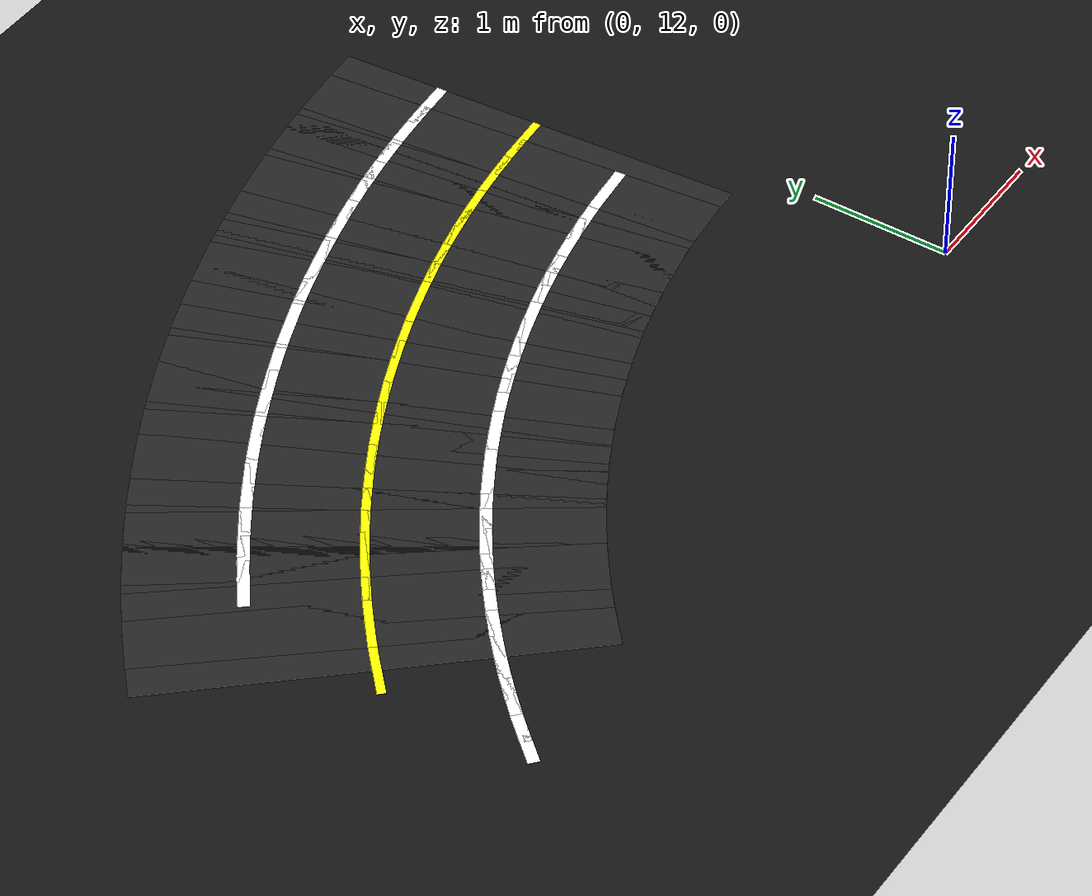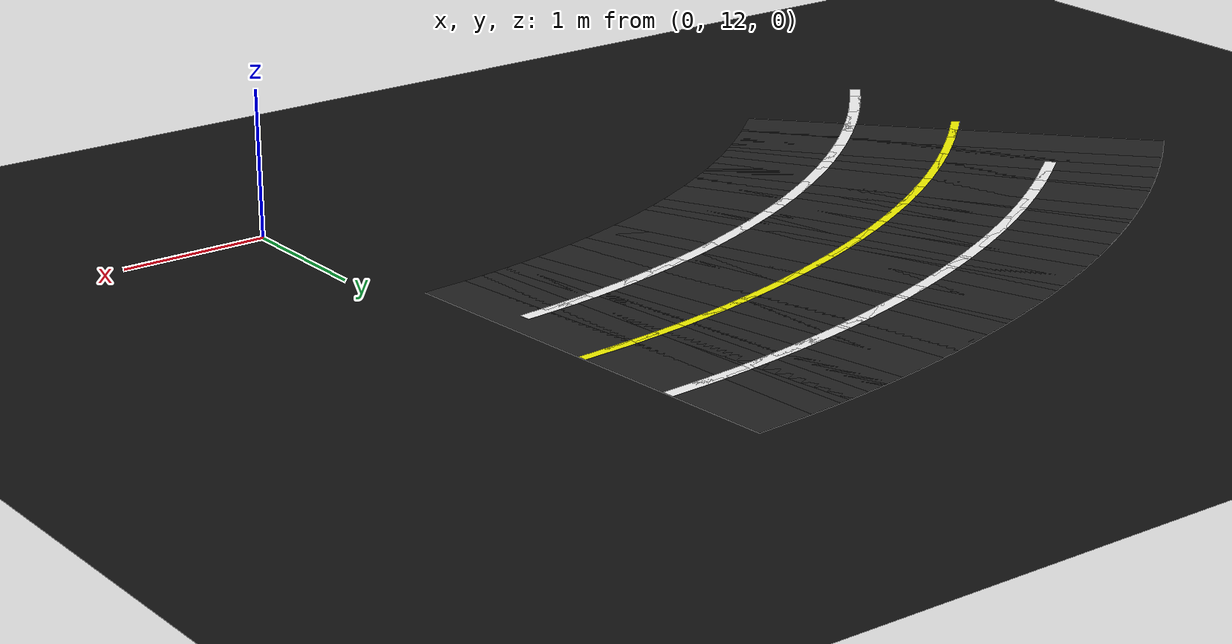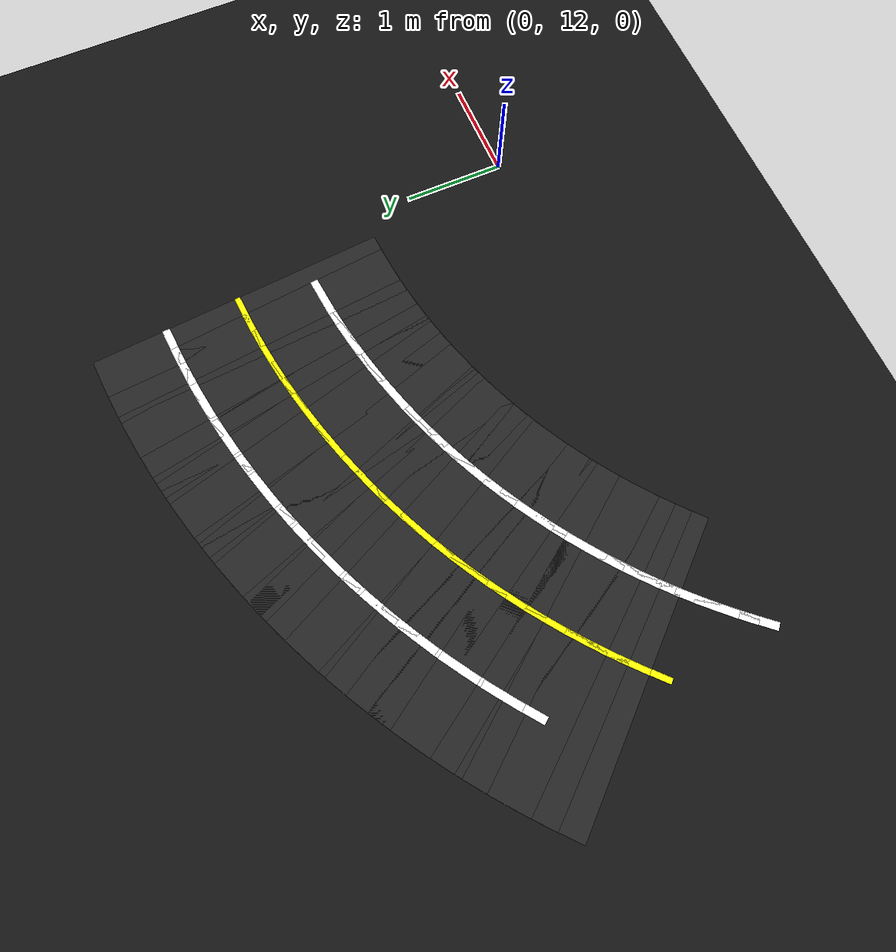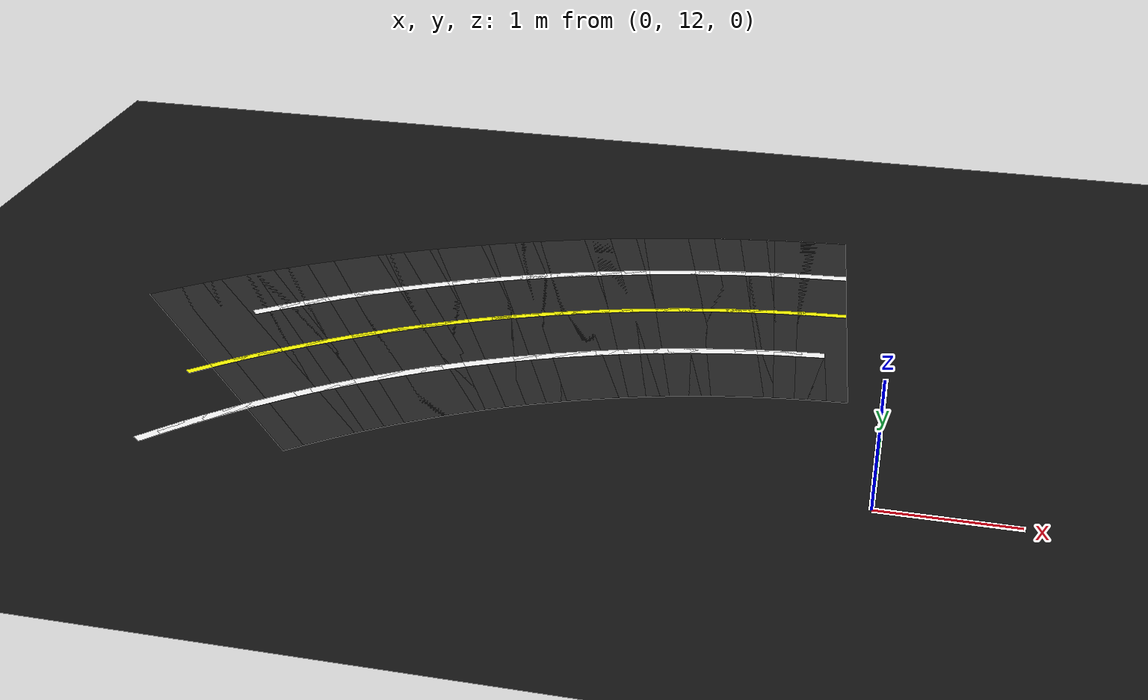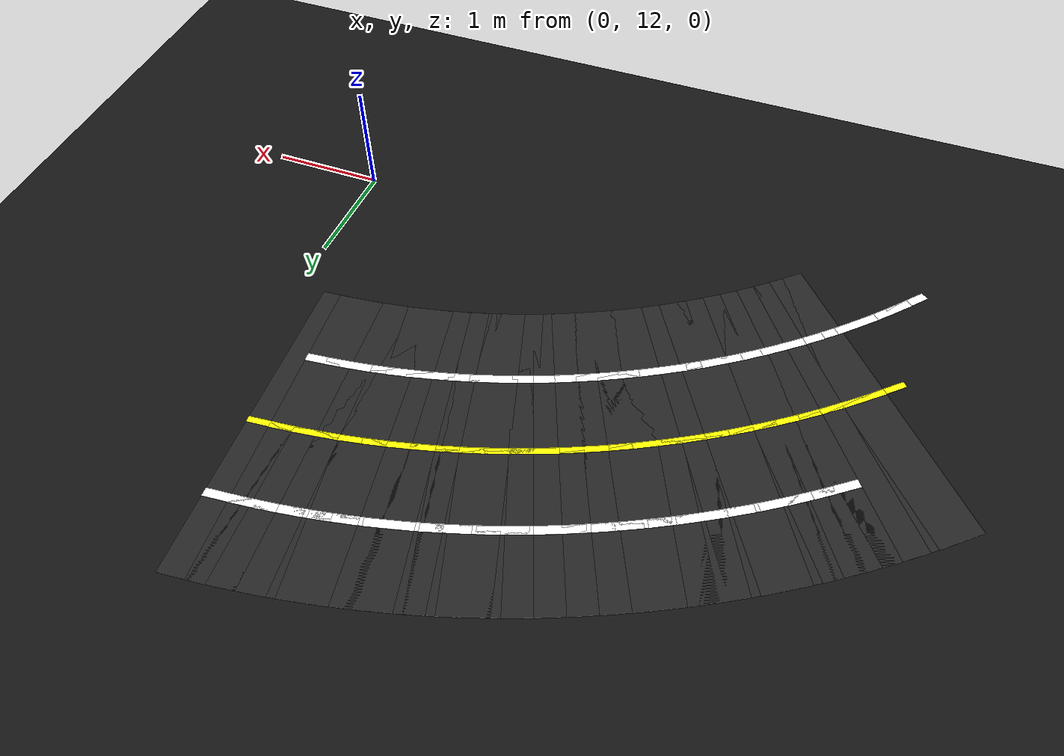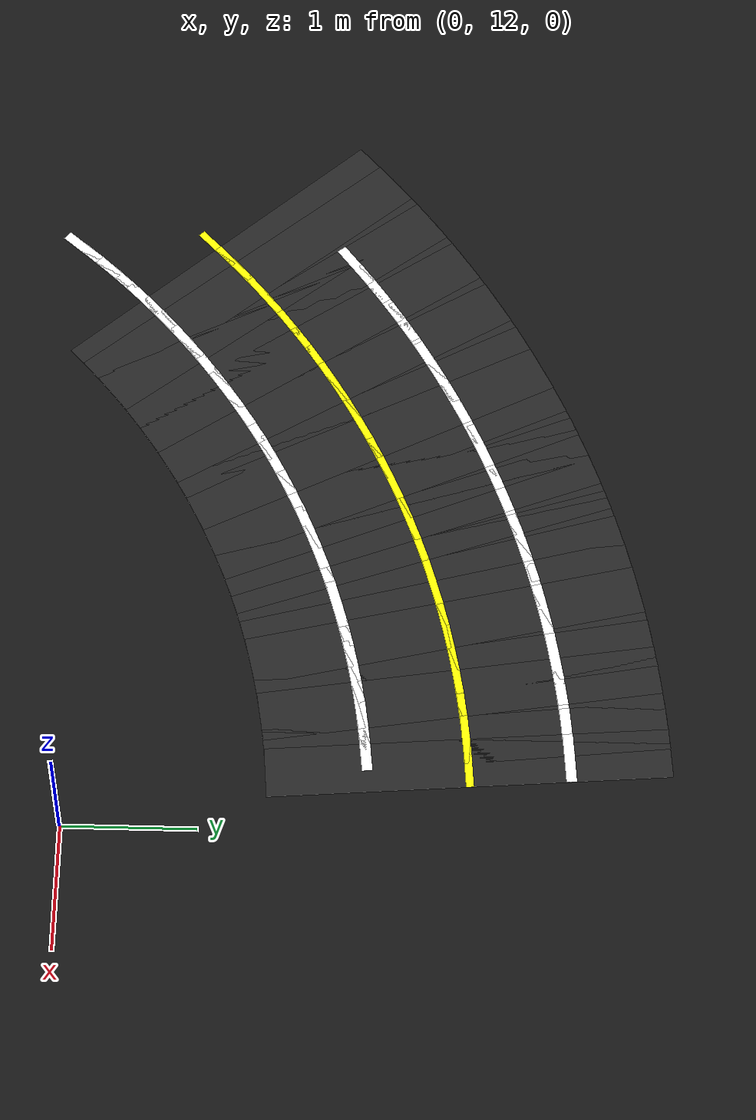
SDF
<sdf version="1.6">
 <world name="figure8_world">
  <model name="ground_plane">
   <static>true</static>
   <link name="link">
    <collision name="collision">
     <geometry><plane><normal>0 0 1</normal><size>120 120</size></plane></geometry>
    </collision>
    <visual name="visual">
     <geometry><plane><normal>0 0 1</normal><size>120 120</size></plane></geometry>
     <material><ambient>0.08 0.08 0.08 1</ambient><diffuse>0.08 0.08 0.08 1</diffuse></material>
    </visual>
   </link>
  </model>
  <model name="seg_00252">
   <static>true</static>
   <pose>-0.5884 14.9769 0.0010 0 0 3.2201</pose>
   <link name="link">
    <collision name="collision"><geometry><box><size>0.4000 3.0000 0.002</size></box></geometry></collision>
    <visual name="visual">
     <geometry><box><size>0.4000 3.0000 0.002</size></box></geometry>
     <material><ambient>0.14 0.14 0.14 1</ambient><diffuse>0.14 0.14 0.14 1</diffuse></material>
    </visual>
   </link>
  </model>
  <model name="seg_00253">
   <static>true</static>
   <pose>-0.6473 15.7246 0.0030 0 0 3.2201</pose>
   <link name="link">
    <collision name="collision"><geometry><box><size>0.4000 0.0800 0.002</size></box></geometry></collision>
    <visual name="visual">
     <geometry><box><size>0.4000 0.0800 0.002</size></box></geometry>
     <material><ambient>1 1 1 1</ambient><diffuse>1 1 1 1</diffuse></material>
    </visual>
   </link>
  </model>
  <model name="seg_00255">
   <static>true</static>
   <pose>-0.5884 14.9769 0.0030 0 0 3.2201</pose>
   <link name="link">
    <collision name="collision"><geometry><box><size>0.4000 0.0600 0.002</size></box></geometry></collision>
    <visual name="visual">
     <geometry><box><size>0.4000 0.0600 0.002</size></box></geometry>
     <material><ambient>1 1 0 1</ambient><diffuse>1 1 0 1</diffuse></material>
    </visual>
   </link>
  </model>
  <model name="seg_00256">
   <static>true</static>
   <pose>-0.7840 14.9589 0.0010 0 0 3.2463</pose>
   <link name="link">
    <collision name="collision"><geometry><box><size>0.4000 3.0000 0.002</size></box></geometry></collision>
    <visual name="visual">
     <geometry><box><size>0.4000 3.0000 0.002</size></box></geometry>
     <material><ambient>0.14 0.14 0.14 1</ambient><diffuse>0.14 0.14 0.14 1</diffuse></material>
    </visual>
   </link>
  </model>
  <model name="seg_00257">
   <static>true</static>
   <pose>-0.8624 15.7048 0.0030 0 0 3.2463</pose>
   <link name="link">
    <collision name="collision"><geometry><box><size>0.4000 0.0800 0.002</size></box></geometry></collision>
    <visual name="visual">
     <geometry><box><size>0.4000 0.0800 0.002</size></box></geometry>
     <material><ambient>1 1 1 1</ambient><diffuse>1 1 1 1</diffuse></material>
    </visual>
   </link>
  </model>
  <model name="seg_00258">
   <static>true</static>
   <pose>-0.7056 14.2130 0.0030 0 0 3.2463</pose>
   <link name="link">
    <collision name="collision"><geometry><box><size>0.4000 0.0800 0.002</size></box></geometry></collision>
    <visual name="visual">
     <geometry><box><size>0.4000 0.0800 0.002</size></box></geometry>
     <material><ambient>1 1 1 1</ambient><diffuse>1 1 1 1</diffuse></material>
    </visual>
   </link>
  </model>
  <model name="seg_00259">
   <static>true</static>
   <pose>-0.7840 14.9589 0.0030 0 0 3.2463</pose>
   <link name="link">
    <collision name="collision"><geometry><box><size>0.4000 0.0600 0.002</size></box></geometry></collision>
    <visual name="visual">
     <geometry><box><size>0.4000 0.0600 0.002</size></box></geometry>
     <material><ambient>1 1 0 1</ambient><diffuse>1 1 0 1</diffuse></material>
    </visual>
   </link>
  </model>
  <model name="seg_00260">
   <static>true</static>
   <pose>-0.9789 14.9358 0.0010 0 0 3.2725</pose>
   <link name="link">
    <collision name="collision"><geometry><box><size>0.4000 3.0000 0.002</size></box></geometry></collision>
    <visual name="visual">
     <geometry><box><size>0.4000 3.0000 0.002</size></box></geometry>
     <material><ambient>0.14 0.14 0.14 1</ambient><diffuse>0.14 0.14 0.14 1</diffuse></material>
    </visual>
   </link>
  </model>
  <model name="seg_00261">
   <static>true</static>
   <pose>-1.0768 15.6794 0.0030 0 0 3.2725</pose>
   <link name="link">
    <collision name="collision"><geometry><box><size>0.4000 0.0800 0.002</size></box></geometry></collision>
    <visual name="visual">
     <geometry><box><size>0.4000 0.0800 0.002</size></box></geometry>
     <material><ambient>1 1 1 1</ambient><diffuse>1 1 1 1</diffuse></material>
    </visual>
   </link>
  </model>
  <model name="seg_00262">
   <static>true</static>
   <pose>-0.8811 14.1923 0.0030 0 0 3.2725</pose>
   <link name="link">
    <collision name="collision"><geometry><box><size>0.4000 0.0800 0.002</size></box></geometry></collision>
    <visual name="visual">
     <geometry><box><size>0.4000 0.0800 0.002</size></box></geometry>
     <material><ambient>1 1 1 1</ambient><diffuse>1 1 1 1</diffuse></material>
    </visual>
   </link>
  </model>
  <model name="seg_00263">
   <static>true</static>
   <pose>-0.9789 14.9358 0.0030 0 0 3.2725</pose>
   <link name="link">
    <collision name="collision"><geometry><box><size>0.4000 0.0600 0.002</size></box></geometry></collision>
    <visual name="visual">
     <geometry><box><size>0.4000 0.0600 0.002</size></box></geometry>
     <material><ambient>1 1 0 1</ambient><diffuse>1 1 0 1</diffuse></material>
    </visual>
   </link>
  </model>
  <model name="seg_00264">
   <static>true</static>
   <pose>-1.1733 14.9077 0.0010 0 0 3.2987</pose>
   <link name="link">
    <collision name="collision"><geometry><box><size>0.4000 3.0000 0.002</size></box></geometry></collision>
    <visual name="visual">
     <geometry><box><size>0.4000 3.0000 0.002</size></box></geometry>
     <material><ambient>0.14 0.14 0.14 1</ambient><diffuse>0.14 0.14 0.14 1</diffuse></material>
    </visual>
   </link>
  </model>
  <model name="seg_00265">
   <static>true</static>
   <pose>-1.2906 15.6484 0.0030 0 0 3.2987</pose>
   <link name="link">
    <collision name="collision"><geometry><box><size>0.4000 0.0800 0.002</size></box></geometry></collision>
    <visual name="visual">
     <geometry><box><size>0.4000 0.0800 0.002</size></box></geometry>
     <material><ambient>1 1 1 1</ambient><diffuse>1 1 1 1</diffuse></material>
    </visual>
   </link>
  </model>
  <model name="seg_00266">
   <static>true</static>
   <pose>-1.0559 14.1669 0.0030 0 0 3.2987</pose>
   <link name="link">
    <collision name="collision"><geometry><box><size>0.4000 0.0800 0.002</size></box></geometry></collision>
    <visual name="visual">
     <geometry><box><size>0.4000 0.0800 0.002</size></box></geometry>
     <material><ambient>1 1 1 1</ambient><diffuse>1 1 1 1</diffuse></material>
    </visual>
   </link>
  </model>
  <model name="seg_00267">
   <static>true</static>
   <pose>-1.1733 14.9077 0.0030 0 0 3.2987</pose>
   <link name="link">
    <collision name="collision"><geometry><box><size>0.4000 0.0600 0.002</size></box></geometry></collision>
    <visual name="visual">
     <geometry><box><size>0.4000 0.0600 0.002</size></box></geometry>
     <material><ambient>1 1 0 1</ambient><diffuse>1 1 0 1</diffuse></material>
    </visual>
   </link>
  </model>
  <model name="seg_00268">
   <static>true</static>
   <pose>-1.3668 14.8744 0.0010 0 0 3.3249</pose>
   <link name="link">
    <collision name="collision"><geometry><box><size>0.4000 3.0000 0.002</size></box></geometry></collision>
    <visual name="visual">
     <geometry><box><size>0.4000 3.0000 0.002</size></box></geometry>
     <material><ambient>0.14 0.14 0.14 1</ambient><diffuse>0.14 0.14 0.14 1</diffuse></material>
    </visual>
   </link>
  </model>
  <model name="seg_00269">
   <static>true</static>
   <pose>-1.5034 15.6119 0.0030 0 0 3.3249</pose>
   <link name="link">
    <collision name="collision"><geometry><box><size>0.4000 0.0800 0.002</size></box></geometry></collision>
    <visual name="visual">
     <geometry><box><size>0.4000 0.0800 0.002</size></box></geometry>
     <material><ambient>1 1 1 1</ambient><diffuse>1 1 1 1</diffuse></material>
    </visual>
   </link>
  </model>
  <model name="seg_00270">
   <static>true</static>
   <pose>-1.2301 14.1370 0.0030 0 0 3.3249</pose>
   <link name="link">
    <collision name="collision"><geometry><box><size>0.4000 0.0800 0.002</size></box></geometry></collision>
    <visual name="visual">
     <geometry><box><size>0.4000 0.0800 0.002</size></box></geometry>
     <material><ambient>1 1 1 1</ambient><diffuse>1 1 1 1</diffuse></material>
    </visual>
   </link>
  </model>
  <model name="seg_00271">
   <static>true</static>
   <pose>-1.3668 14.8744 0.0030 0 0 3.3249</pose>
   <link name="link">
    <collision name="collision"><geometry><box><size>0.4000 0.0600 0.002</size></box></geometry></collision>
    <visual name="visual">
     <geometry><box><size>0.4000 0.0600 0.002</size></box></geometry>
     <material><ambient>1 1 0 1</ambient><diffuse>1 1 0 1</diffuse></material>
    </visual>
   </link>
  </model>
  <model name="seg_00272">
   <static>true</static>
   <pose>-1.5593 14.8361 0.0010 0 0 3.3510</pose>
   <link name="link">
    <collision name="collision"><geometry><box><size>0.4000 3.0000 0.002</size></box></geometry></collision>
    <visual name="visual">
     <geometry><box><size>0.4000 3.0000 0.002</size></box></geometry>
     <material><ambient>0.14 0.14 0.14 1</ambient><diffuse>0.14 0.14 0.14 1</diffuse></material>
    </visual>
   </link>
  </model>
  <model name="seg_00273">
   <static>true</static>
   <pose>-1.7153 15.5697 0.0030 0 0 3.3510</pose>
   <link name="link">
    <collision name="collision"><geometry><box><size>0.4000 0.0800 0.002</size></box></geometry></collision>
    <visual name="visual">
     <geometry><box><size>0.4000 0.0800 0.002</size></box></geometry>
     <material><ambient>1 1 1 1</ambient><diffuse>1 1 1 1</diffuse></material>
    </visual>
   </link>
  </model>
  <model name="seg_00274">
   <static>true</static>
   <pose>-1.4034 14.1025 0.0030 0 0 3.3510</pose>
   <link name="link">
    <collision name="collision"><geometry><box><size>0.4000 0.0800 0.002</size></box></geometry></collision>
    <visual name="visual">
     <geometry><box><size>0.4000 0.0800 0.002</size></box></geometry>
     <material><ambient>1 1 1 1</ambient><diffuse>1 1 1 1</diffuse></material>
    </visual>
   </link>
  </model>
  <model name="seg_00275">
   <static>true</static>
   <pose>-1.5593 14.8361 0.0030 0 0 3.3510</pose>
   <link name="link">
    <collision name="collision"><geometry><box><size>0.4000 0.0600 0.002</size></box></geometry></collision>
    <visual name="visual">
     <geometry><box><size>0.4000 0.0600 0.002</size></box></geometry>
     <material><ambient>1 1 0 1</ambient><diffuse>1 1 0 1</diffuse></material>
    </visual>
   </link>
  </model>
  <model name="seg_00276">
   <static>true</static>
   <pose>-1.7508 14.7928 0.0010 0 0 3.3772</pose>
   <link name="link">
    <collision name="collision"><geometry><box><size>0.4000 3.0000 0.002</size></box></geometry></collision>
    <visual name="visual">
     <geometry><box><size>0.4000 3.0000 0.002</size></box></geometry>
     <material><ambient>0.14 0.14 0.14 1</ambient><diffuse>0.14 0.14 0.14 1</diffuse></material>
    </visual>
   </link>
  </model>
  <model name="seg_00277">
   <static>true</static>
   <pose>-1.9259 15.5221 0.0030 0 0 3.3772</pose>
   <link name="link">
    <collision name="collision"><geometry><box><size>0.4000 0.0800 0.002</size></box></geometry></collision>
    <visual name="visual">
     <geometry><box><size>0.4000 0.0800 0.002</size></box></geometry>
     <material><ambient>1 1 1 1</ambient><diffuse>1 1 1 1</diffuse></material>
    </visual>
   </link>
  </model>
  <model name="seg_00278">
   <static>true</static>
   <pose>-1.5758 14.0635 0.0030 0 0 3.3772</pose>
   <link name="link">
    <collision name="collision"><geometry><box><size>0.4000 0.0800 0.002</size></box></geometry></collision>
    <visual name="visual">
     <geometry><box><size>0.4000 0.0800 0.002</size></box></geometry>
     <material><ambient>1 1 1 1</ambient><diffuse>1 1 1 1</diffuse></material>
    </visual>
   </link>
  </model>
  <model name="seg_00279">
   <static>true</static>
   <pose>-1.7508 14.7928 0.0030 0 0 3.3772</pose>
   <link name="link">
    <collision name="collision"><geometry><box><size>0.4000 0.0600 0.002</size></box></geometry></collision>
    <visual name="visual">
     <geometry><box><size>0.4000 0.0600 0.002</size></box></geometry>
     <material><ambient>1 1 0 1</ambient><diffuse>1 1 0 1</diffuse></material>
    </visual>
   </link>
  </model>
  <model name="seg_00280">
   <static>true</static>
   <pose>-1.9411 14.7444 0.0010 0 0 3.4034</pose>
   <link name="link">
    <collision name="collision"><geometry><box><size>0.4000 3.0000 0.002</size></box></geometry></collision>
    <visual name="visual">
     <geometry><box><size>0.4000 3.0000 0.002</size></box></geometry>
     <material><ambient>0.14 0.14 0.14 1</ambient><diffuse>0.14 0.14 0.14 1</diffuse></material>
    </visual>
   </link>
  </model>
  <model name="seg_00281">
   <static>true</static>
   <pose>-2.1353 15.4689 0.0030 0 0 3.4034</pose>
   <link name="link">
    <collision name="collision"><geometry><box><size>0.4000 0.0800 0.002</size></box></geometry></collision>
    <visual name="visual">
     <geometry><box><size>0.4000 0.0800 0.002</size></box></geometry>
     <material><ambient>1 1 1 1</ambient><diffuse>1 1 1 1</diffuse></material>
    </visual>
   </link>
  </model>
  <model name="seg_00282">
   <static>true</static>
   <pose>-1.7470 14.0200 0.0030 0 0 3.4034</pose>
   <link name="link">
    <collision name="collision"><geometry><box><size>0.4000 0.0800 0.002</size></box></geometry></collision>
    <visual name="visual">
     <geometry><box><size>0.4000 0.0800 0.002</size></box></geometry>
     <material><ambient>1 1 1 1</ambient><diffuse>1 1 1 1</diffuse></material>
    </visual>
   </link>
  </model>
  <model name="seg_00283">
   <static>true</static>
   <pose>-1.9411 14.7444 0.0030 0 0 3.4034</pose>
   <link name="link">
    <collision name="collision"><geometry><box><size>0.4000 0.0600 0.002</size></box></geometry></collision>
    <visual name="visual">
     <geometry><box><size>0.4000 0.0600 0.002</size></box></geometry>
     <material><ambient>1 1 0 1</ambient><diffuse>1 1 0 1</diffuse></material>
    </visual>
   </link>
  </model>
  <model name="seg_00284">
   <static>true</static>
   <pose>-2.1301 14.6911 0.0010 0 0 3.4296</pose>
   <link name="link">
    <collision name="collision"><geometry><box><size>0.4000 3.0000 0.002</size></box></geometry></collision>
    <visual name="visual">
     <geometry><box><size>0.4000 3.0000 0.002</size></box></geometry>
     <material><ambient>0.14 0.14 0.14 1</ambient><diffuse>0.14 0.14 0.14 1</diffuse></material>
    </visual>
   </link>
  </model>
  <model name="seg_00285">
   <static>true</static>
   <pose>-2.3431 15.4103 0.0030 0 0 3.4296</pose>
   <link name="link">
    <collision name="collision"><geometry><box><size>0.4000 0.0800 0.002</size></box></geometry></collision>
    <visual name="visual">
     <geometry><box><size>0.4000 0.0800 0.002</size></box></geometry>
     <material><ambient>1 1 1 1</ambient><diffuse>1 1 1 1</diffuse></material>
    </visual>
   </link>
  </model>
  <model name="seg_00286">
   <static>true</static>
   <pose>-1.9171 13.9720 0.0030 0 0 3.4296</pose>
   <link name="link">
    <collision name="collision"><geometry><box><size>0.4000 0.0800 0.002</size></box></geometry></collision>
    <visual name="visual">
     <geometry><box><size>0.4000 0.0800 0.002</size></box></geometry>
     <material><ambient>1 1 1 1</ambient><diffuse>1 1 1 1</diffuse></material>
    </visual>
   </link>
  </model>
  <model name="seg_00287">
   <static>true</static>
   <pose>-2.1301 14.6911 0.0030 0 0 3.4296</pose>
   <link name="link">
    <collision name="collision"><geometry><box><size>0.4000 0.0600 0.002</size></box></geometry></collision>
    <visual name="visual">
     <geometry><box><size>0.4000 0.0600 0.002</size></box></geometry>
     <material><ambient>1 1 0 1</ambient><diffuse>1 1 0 1</diffuse></material>
    </visual>
   </link>
  </model>
  <model name="seg_00288">
   <static>true</static>
   <pose>-2.3176 14.6329 0.0010 0 0 3.4558</pose>
   <link name="link">
    <collision name="collision"><geometry><box><size>0.4000 3.0000 0.002</size></box></geometry></collision>
    <visual name="visual">
     <geometry><box><size>0.4000 3.0000 0.002</size></box></geometry>
     <material><ambient>0.14 0.14 0.14 1</ambient><diffuse>0.14 0.14 0.14 1</diffuse></material>
    </visual>
   </link>
  </model>
  <model name="seg_00289">
   <static>true</static>
   <pose>-2.5494 15.3462 0.0030 0 0 3.4558</pose>
   <link name="link">
    <collision name="collision"><geometry><box><size>0.4000 0.0800 0.002</size></box></geometry></collision>
    <visual name="visual">
     <geometry><box><size>0.4000 0.0800 0.002</size></box></geometry>
     <material><ambient>1 1 1 1</ambient><diffuse>1 1 1 1</diffuse></material>
    </visual>
   </link>
  </model>
  <model name="seg_00290">
   <static>true</static>
   <pose>-2.0859 13.9196 0.0030 0 0 3.4558</pose>
   <link name="link">
    <collision name="collision"><geometry><box><size>0.4000 0.0800 0.002</size></box></geometry></collision>
    <visual name="visual">
     <geometry><box><size>0.4000 0.0800 0.002</size></box></geometry>
     <material><ambient>1 1 1 1</ambient><diffuse>1 1 1 1</diffuse></material>
    </visual>
   </link>
  </model>
  <model name="seg_00291">
   <static>true</static>
   <pose>-2.3176 14.6329 0.0030 0 0 3.4558</pose>
   <link name="link">
    <collision name="collision"><geometry><box><size>0.4000 0.0600 0.002</size></box></geometry></collision>
    <visual name="visual">
     <geometry><box><size>0.4000 0.0600 0.002</size></box></geometry>
     <material><ambient>1 1 0 1</ambient><diffuse>1 1 0 1</diffuse></material>
    </visual>
   </link>
  </model>
  <model name="seg_00292">
   <static>true</static>
   <pose>-2.5036 14.5698 0.0010 0 0 3.4819</pose>
   <link name="link">
    <collision name="collision"><geometry><box><size>0.4000 3.0000 0.002</size></box></geometry></collision>
    <visual name="visual">
     <geometry><box><size>0.4000 3.0000 0.002</size></box></geometry>
     <material><ambient>0.14 0.14 0.14 1</ambient><diffuse>0.14 0.14 0.14 1</diffuse></material>
    </visual>
   </link>
  </model>
  <model name="seg_00293">
   <static>true</static>
   <pose>-2.7539 15.2768 0.0030 0 0 3.4819</pose>
   <link name="link">
    <collision name="collision"><geometry><box><size>0.4000 0.0800 0.002</size></box></geometry></collision>
    <visual name="visual">
     <geometry><box><size>0.4000 0.0800 0.002</size></box></geometry>
     <material><ambient>1 1 1 1</ambient><diffuse>1 1 1 1</diffuse></material>
    </visual>
   </link>
  </model>
  <model name="seg_00294">
   <static>true</static>
   <pose>-2.2532 13.8628 0.0030 0 0 3.4819</pose>
   <link name="link">
    <collision name="collision"><geometry><box><size>0.4000 0.0800 0.002</size></box></geometry></collision>
    <visual name="visual">
     <geometry><box><size>0.4000 0.0800 0.002</size></box></geometry>
     <material><ambient>1 1 1 1</ambient><diffuse>1 1 1 1</diffuse></material>
    </visual>
   </link>
  </model>
  <model name="seg_00295">
   <static>true</static>
   <pose>-2.5036 14.5698 0.0030 0 0 3.4819</pose>
   <link name="link">
    <collision name="collision"><geometry><box><size>0.4000 0.0600 0.002</size></box></geometry></collision>
    <visual name="visual">
     <geometry><box><size>0.4000 0.0600 0.002</size></box></geometry>
     <material><ambient>1 1 0 1</ambient><diffuse>1 1 0 1</diffuse></material>
    </visual>
   </link>
  </model>
  <model name="seg_00296">
   <static>true</static>
   <pose>-2.6878 14.5019 0.0010 0 0 3.5081</pose>
   <link name="link">
    <collision name="collision"><geometry><box><size>0.4000 3.0000 0.002</size></box></geometry></collision>
    <visual name="visual">
     <geometry><box><size>0.4000 3.0000 0.002</size></box></geometry>
     <material><ambient>0.14 0.14 0.14 1</ambient><diffuse>0.14 0.14 0.14 1</diffuse></material>
    </visual>
   </link>
  </model>
  <model name="seg_00297">
   <static>true</static>
   <pose>-2.9565 15.2020 0.0030 0 0 3.5081</pose>
   <link name="link">
    <collision name="collision"><geometry><box><size>0.4000 0.0800 0.002</size></box></geometry></collision>
    <visual name="visual">
     <geometry><box><size>0.4000 0.0800 0.002</size></box></geometry>
     <material><ambient>1 1 1 1</ambient><diffuse>1 1 1 1</diffuse></material>
    </visual>
   </link>
  </model>
  <model name="seg_00298">
   <static>true</static>
   <pose>-2.4190 13.8017 0.0030 0 0 3.5081</pose>
   <link name="link">
    <collision name="collision"><geometry><box><size>0.4000 0.0800 0.002</size></box></geometry></collision>
    <visual name="visual">
     <geometry><box><size>0.4000 0.0800 0.002</size></box></geometry>
     <material><ambient>1 1 1 1</ambient><diffuse>1 1 1 1</diffuse></material>
    </visual>
   </link>
  </model>
  <model name="seg_00299">
   <static>true</static>
   <pose>-2.6878 14.5019 0.0030 0 0 3.5081</pose>
   <link name="link">
    <collision name="collision"><geometry><box><size>0.4000 0.0600 0.002</size></box></geometry></collision>
    <visual name="visual">
     <geometry><box><size>0.4000 0.0600 0.002</size></box></geometry>
     <material><ambient>1 1 0 1</ambient><diffuse>1 1 0 1</diffuse></material>
    </visual>
   </link>
  </model>
  <model name="seg_00300">
   <static>true</static>
   <pose>-2.8701 14.4291 0.0010 0 0 3.5343</pose>
   <link name="link">
    <collision name="collision"><geometry><box><size>0.4000 3.0000 0.002</size></box></geometry></collision>
    <visual name="visual">
     <geometry><box><size>0.4000 3.0000 0.002</size></box></geometry>
     <material><ambient>0.14 0.14 0.14 1</ambient><diffuse>0.14 0.14 0.14 1</diffuse></material>
    </visual>
   </link>
  </model>
  <model name="seg_00301">
   <static>true</static>
   <pose>-3.1571 15.1220 0.0030 0 0 3.5343</pose>
   <link name="link">
    <collision name="collision"><geometry><box><size>0.4000 0.0800 0.002</size></box></geometry></collision>
    <visual name="visual">
     <geometry><box><size>0.4000 0.0800 0.002</size></box></geometry>
     <material><ambient>1 1 1 1</ambient><diffuse>1 1 1 1</diffuse></material>
    </visual>
   </link>
  </model>
  <model name="seg_00302">
   <static>true</static>
   <pose>-2.5831 13.7362 0.0030 0 0 3.5343</pose>
   <link name="link">
    <collision name="collision"><geometry><box><size>0.4000 0.0800 0.002</size></box></geometry></collision>
    <visual name="visual">
     <geometry><box><size>0.4000 0.0800 0.002</size></box></geometry>
     <material><ambient>1 1 1 1</ambient><diffuse>1 1 1 1</diffuse></material>
    </visual>
   </link>
  </model>
  <model name="seg_00303">
   <static>true</static>
   <pose>-2.8701 14.4291 0.0030 0 0 3.5343</pose>
   <link name="link">
    <collision name="collision"><geometry><box><size>0.4000 0.0600 0.002</size></box></geometry></collision>
    <visual name="visual">
     <geometry><box><size>0.4000 0.0600 0.002</size></box></geometry>
     <material><ambient>1 1 0 1</ambient><diffuse>1 1 0 1</diffuse></material>
    </visual>
   </link>
  </model>
  <model name="seg_00304">
   <static>true</static>
   <pose>-3.0505 14.3516 0.0010 0 0 3.5605</pose>
   <link name="link">
    <collision name="collision"><geometry><box><size>0.4000 3.0000 0.002</size></box></geometry></collision>
    <visual name="visual">
     <geometry><box><size>0.4000 3.0000 0.002</size></box></geometry>
     <material><ambient>0.14 0.14 0.14 1</ambient><diffuse>0.14 0.14 0.14 1</diffuse></material>
    </visual>
   </link>
  </model>
  <model name="seg_00305">
   <static>true</static>
   <pose>-3.3556 15.0368 0.0030 0 0 3.5605</pose>
   <link name="link">
    <collision name="collision"><geometry><box><size>0.4000 0.0800 0.002</size></box></geometry></collision>
    <visual name="visual">
     <geometry><box><size>0.4000 0.0800 0.002</size></box></geometry>
     <material><ambient>1 1 1 1</ambient><diffuse>1 1 1 1</diffuse></material>
    </visual>
   </link>
  </model>
  <model name="seg_00306">
   <static>true</static>
   <pose>-2.7455 13.6664 0.0030 0 0 3.5605</pose>
   <link name="link">
    <collision name="collision"><geometry><box><size>0.4000 0.0800 0.002</size></box></geometry></collision>
    <visual name="visual">
     <geometry><box><size>0.4000 0.0800 0.002</size></box></geometry>
     <material><ambient>1 1 1 1</ambient><diffuse>1 1 1 1</diffuse></material>
    </visual>
   </link>
  </model>
  <model name="seg_00307">
   <static>true</static>
   <pose>-3.0505 14.3516 0.0030 0 0 3.5605</pose>
   <link name="link">
    <collision name="collision"><geometry><box><size>0.4000 0.0600 0.002</size></box></geometry></collision>
    <visual name="visual">
     <geometry><box><size>0.4000 0.0600 0.002</size></box></geometry>
     <material><ambient>1 1 0 1</ambient><diffuse>1 1 0 1</diffuse></material>
    </visual>
   </link>
  </model>
  <model name="seg_00308">
   <static>true</static>
   <pose>-3.2288 14.2694 0.0010 0 0 3.5867</pose>
   <link name="link">
    <collision name="collision"><geometry><box><size>0.4000 3.0000 0.002</size></box></geometry></collision>
    <visual name="visual">
     <geometry><box><size>0.4000 3.0000 0.002</size></box></geometry>
     <material><ambient>0.14 0.14 0.14 1</ambient><diffuse>0.14 0.14 0.14 1</diffuse></material>
    </visual>
   </link>
  </model>
  <model name="seg_00309">
   <static>true</static>
   <pose>-3.5517 14.9463 0.0030 0 0 3.5867</pose>
   <link name="link">
    <collision name="collision"><geometry><box><size>0.4000 0.0800 0.002</size></box></geometry></collision>
    <visual name="visual">
     <geometry><box><size>0.4000 0.0800 0.002</size></box></geometry>
     <material><ambient>1 1 1 1</ambient><diffuse>1 1 1 1</diffuse></material>
    </visual>
   </link>
  </model>
  <model name="seg_00310">
   <static>true</static>
   <pose>-2.9059 13.5925 0.0030 0 0 3.5867</pose>
   <link name="link">
    <collision name="collision"><geometry><box><size>0.4000 0.0800 0.002</size></box></geometry></collision>
    <visual name="visual">
     <geometry><box><size>0.4000 0.0800 0.002</size></box></geometry>
     <material><ambient>1 1 1 1</ambient><diffuse>1 1 1 1</diffuse></material>
    </visual>
   </link>
  </model>
  <model name="seg_00311">
   <static>true</static>
   <pose>-3.2288 14.2694 0.0030 0 0 3.5867</pose>
   <link name="link">
    <collision name="collision"><geometry><box><size>0.4000 0.0600 0.002</size></box></geometry></collision>
    <visual name="visual">
     <geometry><box><size>0.4000 0.0600 0.002</size></box></geometry>
     <material><ambient>1 1 0 1</ambient><diffuse>1 1 0 1</diffuse></material>
    </visual>
   </link>
  </model>
  <model name="seg_00312">
   <static>true</static>
   <pose>-3.4049 14.1825 0.0010 0 0 3.6128</pose>
   <link name="link">
    <collision name="collision"><geometry><box><size>0.4000 3.0000 0.002</size></box></geometry></collision>
    <visual name="visual">
     <geometry><box><size>0.4000 3.0000 0.002</size></box></geometry>
     <material><ambient>0.14 0.14 0.14 1</ambient><diffuse>0.14 0.14 0.14 1</diffuse></material>
    </visual>
   </link>
  </model>
  <model name="seg_00313">
   <static>true</static>
   <pose>-3.7454 14.8508 0.0030 0 0 3.6128</pose>
   <link name="link">
    <collision name="collision"><geometry><box><size>0.4000 0.0800 0.002</size></box></geometry></collision>
    <visual name="visual">
     <geometry><box><size>0.4000 0.0800 0.002</size></box></geometry>
     <material><ambient>1 1 1 1</ambient><diffuse>1 1 1 1</diffuse></material>
    </visual>
   </link>
  </model>
  <model name="seg_00314">
   <static>true</static>
   <pose>-3.0644 13.5143 0.0030 0 0 3.6128</pose>
   <link name="link">
    <collision name="collision"><geometry><box><size>0.4000 0.0800 0.002</size></box></geometry></collision>
    <visual name="visual">
     <geometry><box><size>0.4000 0.0800 0.002</size></box></geometry>
     <material><ambient>1 1 1 1</ambient><diffuse>1 1 1 1</diffuse></material>
    </visual>
   </link>
  </model>
  <model name="seg_00315">
   <static>true</static>
   <pose>-3.4049 14.1825 0.0030 0 0 3.6128</pose>
   <link name="link">
    <collision name="collision"><geometry><box><size>0.4000 0.0600 0.002</size></box></geometry></collision>
    <visual name="visual">
     <geometry><box><size>0.4000 0.0600 0.002</size></box></geometry>
     <material><ambient>1 1 0 1</ambient><diffuse>1 1 0 1</diffuse></material>
    </visual>
   </link>
  </model>
  <model name="seg_00316">
   <static>true</static>
   <pose>-3.5787 14.0911 0.0010 0 0 3.6390</pose>
   <link name="link">
    <collision name="collision"><geometry><box><size>0.4000 3.0000 0.002</size></box></geometry></collision>
    <visual name="visual">
     <geometry><box><size>0.4000 3.0000 0.002</size></box></geometry>
     <material><ambient>0.14 0.14 0.14 1</ambient><diffuse>0.14 0.14 0.14 1</diffuse></material>
    </visual>
   </link>
  </model>
  <model name="seg_00317">
   <static>true</static>
   <pose>-3.9366 14.7502 0.0030 0 0 3.6390</pose>
   <link name="link">
    <collision name="collision"><geometry><box><size>0.4000 0.0800 0.002</size></box></geometry></collision>
    <visual name="visual">
     <geometry><box><size>0.4000 0.0800 0.002</size></box></geometry>
     <material><ambient>1 1 1 1</ambient><diffuse>1 1 1 1</diffuse></material>
    </visual>
   </link>
  </model>
  <model name="seg_00318">
   <static>true</static>
   <pose>-3.2208 13.4320 0.0030 0 0 3.6390</pose>
   <link name="link">
    <collision name="collision"><geometry><box><size>0.4000 0.0800 0.002</size></box></geometry></collision>
    <visual name="visual">
     <geometry><box><size>0.4000 0.0800 0.002</size></box></geometry>
     <material><ambient>1 1 1 1</ambient><diffuse>1 1 1 1</diffuse></material>
    </visual>
   </link>
  </model>
  <model name="seg_00319">
   <static>true</static>
   <pose>-3.5787 14.0911 0.0030 0 0 3.6390</pose>
   <link name="link">
    <collision name="collision"><geometry><box><size>0.4000 0.0600 0.002</size></box></geometry></collision>
    <visual name="visual">
     <geometry><box><size>0.4000 0.0600 0.002</size></box></geometry>
     <material><ambient>1 1 0 1</ambient><diffuse>1 1 0 1</diffuse></material>
    </visual>
   </link>
  </model>
  <model name="seg_00320">
   <static>true</static>
   <pose>-3.7500 13.9952 0.0010 0 0 3.6652</pose>
   <link name="link">
    <collision name="collision"><geometry><box><size>0.4000 3.0000 0.002</size></box></geometry></collision>
    <visual name="visual">
     <geometry><box><size>0.4000 3.0000 0.002</size></box></geometry>
     <material><ambient>0.14 0.14 0.14 1</ambient><diffuse>0.14 0.14 0.14 1</diffuse></material>
    </visual>
   </link>
  </model>
  <model name="seg_00321">
   <static>true</static>
   <pose>-4.1250 14.6447 0.0030 0 0 3.6652</pose>
   <link name="link">
    <collision name="collision"><geometry><box><size>0.4000 0.0800 0.002</size></box></geometry></collision>
    <visual name="visual">
     <geometry><box><size>0.4000 0.0800 0.002</size></box></geometry>
     <material><ambient>1 1 1 1</ambient><diffuse>1 1 1 1</diffuse></material>
    </visual>
   </link>
  </model>
  <model name="seg_00322">
   <static>true</static>
   <pose>-3.3750 13.3457 0.0030 0 0 3.6652</pose>
   <link name="link">
    <collision name="collision"><geometry><box><size>0.4000 0.0800 0.002</size></box></geometry></collision>
    <visual name="visual">
     <geometry><box><size>0.4000 0.0800 0.002</size></box></geometry>
     <material><ambient>1 1 1 1</ambient><diffuse>1 1 1 1</diffuse></material>
    </visual>
   </link>
  </model>
  <model name="seg_00323">
   <static>true</static>
   <pose>-3.7500 13.9952 0.0030 0 0 3.6652</pose>
   <link name="link">
    <collision name="collision"><geometry><box><size>0.4000 0.0600 0.002</size></box></geometry></collision>
    <visual name="visual">
     <geometry><box><size>0.4000 0.0600 0.002</size></box></geometry>
     <material><ambient>1 1 0 1</ambient><diffuse>1 1 0 1</diffuse></material>
    </visual>
   </link>
  </model>
  <model name="seg_00324">
   <static>true</static>
   <pose>-3.9187 13.8948 0.0010 0 0 3.6914</pose>
   <link name="link">
    <collision name="collision"><geometry><box><size>0.4000 3.0000 0.002</size></box></geometry></collision>
    <visual name="visual">
     <geometry><box><size>0.4000 3.0000 0.002</size></box></geometry>
     <material><ambient>0.14 0.14 0.14 1</ambient><diffuse>0.14 0.14 0.14 1</diffuse></material>
    </visual>
   </link>
  </model>
  <model name="seg_00325">
   <static>true</static>
   <pose>-4.3106 14.5343 0.0030 0 0 3.6914</pose>
   <link name="link">
    <collision name="collision"><geometry><box><size>0.4000 0.0800 0.002</size></box></geometry></collision>
    <visual name="visual">
     <geometry><box><size>0.4000 0.0800 0.002</size></box></geometry>
     <material><ambient>1 1 1 1</ambient><diffuse>1 1 1 1</diffuse></material>
    </visual>
   </link>
  </model>
  <model name="seg_00326">
   <static>true</static>
   <pose>-3.5269 13.2553 0.0030 0 0 3.6914</pose>
   <link name="link">
    <collision name="collision"><geometry><box><size>0.4000 0.0800 0.002</size></box></geometry></collision>
    <visual name="visual">
     <geometry><box><size>0.4000 0.0800 0.002</size></box></geometry>
     <material><ambient>1 1 1 1</ambient><diffuse>1 1 1 1</diffuse></material>
    </visual>
   </link>
  </model>
  <model name="seg_00327">
   <static>true</static>
   <pose>-3.9187 13.8948 0.0030 0 0 3.6914</pose>
   <link name="link">
    <collision name="collision"><geometry><box><size>0.4000 0.0600 0.002</size></box></geometry></collision>
    <visual name="visual">
     <geometry><box><size>0.4000 0.0600 0.002</size></box></geometry>
     <material><ambient>1 1 0 1</ambient><diffuse>1 1 0 1</diffuse></material>
    </visual>
   </link>
  </model>
  <model name="seg_00328">
   <static>true</static>
   <pose>-4.0848 13.7900 0.0010 0 0 3.7176</pose>
   <link name="link">
    <collision name="collision"><geometry><box><size>0.4000 3.0000 0.002</size></box></geometry></collision>
    <visual name="visual">
     <geometry><box><size>0.4000 3.0000 0.002</size></box></geometry>
     <material><ambient>0.14 0.14 0.14 1</ambient><diffuse>0.14 0.14 0.14 1</diffuse></material>
    </visual>
   </link>
  </model>
  <model name="seg_00329">
   <static>true</static>
   <pose>-4.4933 14.4190 0.0030 0 0 3.7176</pose>
   <link name="link">
    <collision name="collision"><geometry><box><size>0.4000 0.0800 0.002</size></box></geometry></collision>
    <visual name="visual">
     <geometry><box><size>0.4000 0.0800 0.002</size></box></geometry>
     <material><ambient>1 1 1 1</ambient><diffuse>1 1 1 1</diffuse></material>
    </visual>
   </link>
  </model>
  <model name="seg_00330">
   <static>true</static>
   <pose>-3.6763 13.1610 0.0030 0 0 3.7176</pose>
   <link name="link">
    <collision name="collision"><geometry><box><size>0.4000 0.0800 0.002</size></box></geometry></collision>
    <visual name="visual">
     <geometry><box><size>0.4000 0.0800 0.002</size></box></geometry>
     <material><ambient>1 1 1 1</ambient><diffuse>1 1 1 1</diffuse></material>
    </visual>
   </link>
  </model>
  <model name="seg_00331">
   <static>true</static>
   <pose>-4.0848 13.7900 0.0030 0 0 3.7176</pose>
   <link name="link">
    <collision name="collision"><geometry><box><size>0.4000 0.0600 0.002</size></box></geometry></collision>
    <visual name="visual">
     <geometry><box><size>0.4000 0.0600 0.002</size></box></geometry>
     <material><ambient>1 1 0 1</ambient><diffuse>1 1 0 1</diffuse></material>
    </visual>
   </link>
  </model>
  <model name="seg_00332">
   <static>true</static>
   <pose>-4.2480 13.6809 0.0010 0 0 3.7437</pose>
   <link name="link">
    <collision name="collision"><geometry><box><size>0.4000 3.0000 0.002</size></box></geometry></collision>
    <visual name="visual">
     <geometry><box><size>0.4000 3.0000 0.002</size></box></geometry>
     <material><ambient>0.14 0.14 0.14 1</ambient><diffuse>0.14 0.14 0.14 1</diffuse></material>
    </visual>
   </link>
  </model>
  <model name="seg_00333">
   <static>true</static>
   <pose>-4.6729 14.2990 0.0030 0 0 3.7437</pose>
   <link name="link">
    <collision name="collision"><geometry><box><size>0.4000 0.0800 0.002</size></box></geometry></collision>
    <visual name="visual">
     <geometry><box><size>0.4000 0.0800 0.002</size></box></geometry>
     <material><ambient>1 1 1 1</ambient><diffuse>1 1 1 1</diffuse></material>
    </visual>
   </link>
  </model>
  <model name="seg_00334">
   <static>true</static>
   <pose>-3.8232 13.0629 0.0030 0 0 3.7437</pose>
   <link name="link">
    <collision name="collision"><geometry><box><size>0.4000 0.0800 0.002</size></box></geometry></collision>
    <visual name="visual">
     <geometry><box><size>0.4000 0.0800 0.002</size></box></geometry>
     <material><ambient>1 1 1 1</ambient><diffuse>1 1 1 1</diffuse></material>
    </visual>
   </link>
  </model>
  <model name="seg_00335">
   <static>true</static>
   <pose>-4.2480 13.6809 0.0030 0 0 3.7437</pose>
   <link name="link">
    <collision name="collision"><geometry><box><size>0.4000 0.0600 0.002</size></box></geometry></collision>
    <visual name="visual">
     <geometry><box><size>0.4000 0.0600 0.002</size></box></geometry>
     <material><ambient>1 1 0 1</ambient><diffuse>1 1 0 1</diffuse></material>
    </visual>
   </link>
  </model>
  <model name="seg_00336">
   <static>true</static>
   <pose>-4.4084 13.5676 0.0010 0 0 3.7699</pose>
   <link name="link">
    <collision name="collision"><geometry><box><size>0.4000 3.0000 0.002</size></box></geometry></collision>
    <visual name="visual">
     <geometry><box><size>0.4000 3.0000 0.002</size></box></geometry>
     <material><ambient>0.14 0.14 0.14 1</ambient><diffuse>0.14 0.14 0.14 1</diffuse></material>
    </visual>
   </link>
  </model>
  <model name="seg_00337">
   <static>true</static>
   <pose>-4.8492 14.1744 0.0030 0 0 3.7699</pose>
   <link name="link">
    <collision name="collision"><geometry><box><size>0.4000 0.0800 0.002</size></box></geometry></collision>
    <visual name="visual">
     <geometry><box><size>0.4000 0.0800 0.002</size></box></geometry>
     <material><ambient>1 1 1 1</ambient><diffuse>1 1 1 1</diffuse></material>
    </visual>
   </link>
  </model>
  <model name="seg_00338">
   <static>true</static>
   <pose>-3.9676 12.9609 0.0030 0 0 3.7699</pose>
   <link name="link">
    <collision name="collision"><geometry><box><size>0.4000 0.0800 0.002</size></box></geometry></collision>
    <visual name="visual">
     <geometry><box><size>0.4000 0.0800 0.002</size></box></geometry>
     <material><ambient>1 1 1 1</ambient><diffuse>1 1 1 1</diffuse></material>
    </visual>
   </link>
  </model>
  <model name="seg_00339">
   <static>true</static>
   <pose>-4.4084 13.5676 0.0030 0 0 3.7699</pose>
   <link name="link">
    <collision name="collision"><geometry><box><size>0.4000 0.0600 0.002</size></box></geometry></collision>
    <visual name="visual">
     <geometry><box><size>0.4000 0.0600 0.002</size></box></geometry>
     <material><ambient>1 1 0 1</ambient><diffuse>1 1 0 1</diffuse></material>
    </visual>
   </link>
  </model>
  <model name="seg_00340">
   <static>true</static>
   <pose>-4.5657 13.4502 0.0010 0 0 3.7961</pose>
   <link name="link">
    <collision name="collision"><geometry><box><size>0.4000 3.0000 0.002</size></box></geometry></collision>
    <visual name="visual">
     <geometry><box><size>0.4000 3.0000 0.002</size></box></geometry>
     <material><ambient>0.14 0.14 0.14 1</ambient><diffuse>0.14 0.14 0.14 1</diffuse></material>
    </visual>
   </link>
  </model>
  <model name="seg_00341">
   <static>true</static>
   <pose>-5.0223 14.0452 0.0030 0 0 3.7961</pose>
   <link name="link">
    <collision name="collision"><geometry><box><size>0.4000 0.0800 0.002</size></box></geometry></collision>
    <visual name="visual">
     <geometry><box><size>0.4000 0.0800 0.002</size></box></geometry>
     <material><ambient>1 1 1 1</ambient><diffuse>1 1 1 1</diffuse></material>
    </visual>
   </link>
  </model>
  <model name="seg_00342">
   <static>true</static>
   <pose>-4.1091 12.8551 0.0030 0 0 3.7961</pose>
   <link name="link">
    <collision name="collision"><geometry><box><size>0.4000 0.0800 0.002</size></box></geometry></collision>
    <visual name="visual">
     <geometry><box><size>0.4000 0.0800 0.002</size></box></geometry>
     <material><ambient>1 1 1 1</ambient><diffuse>1 1 1 1</diffuse></material>
    </visual>
   </link>
  </model>
  <model name="seg_00343">
   <static>true</static>
   <pose>-4.5657 13.4502 0.0030 0 0 3.7961</pose>
   <link name="link">
    <collision name="collision"><geometry><box><size>0.4000 0.0600 0.002</size></box></geometry></collision>
    <visual name="visual">
     <geometry><box><size>0.4000 0.0600 0.002</size></box></geometry>
     <material><ambient>1 1 0 1</ambient><diffuse>1 1 0 1</diffuse></material>
    </visual>
   </link>
  </model>
  <model name="seg_00344">
   <static>true</static>
   <pose>-4.7199 13.3286 0.0010 0 0 3.8223</pose>
   <link name="link">
    <collision name="collision"><geometry><box><size>0.4000 3.0000 0.002</size></box></geometry></collision>
    <visual name="visual">
     <geometry><box><size>0.4000 3.0000 0.002</size></box></geometry>
     <material><ambient>0.14 0.14 0.14 1</ambient><diffuse>0.14 0.14 0.14 1</diffuse></material>
    </visual>
   </link>
  </model>
  <model name="seg_00346">
   <static>true</static>
   <pose>-4.2479 12.7457 0.0030 0 0 3.8223</pose>
   <link name="link">
    <collision name="collision"><geometry><box><size>0.4000 0.0800 0.002</size></box></geometry></collision>
    <visual name="visual">
     <geometry><box><size>0.4000 0.0800 0.002</size></box></geometry>
     <material><ambient>1 1 1 1</ambient><diffuse>1 1 1 1</diffuse></material>
    </visual>
   </link>
  </model>
  <model name="seg_00347">
   <static>true</static>
   <pose>-4.7199 13.3286 0.0030 0 0 3.8223</pose>
   <link name="link">
    <collision name="collision"><geometry><box><size>0.4000 0.0600 0.002</size></box></geometry></collision>
    <visual name="visual">
     <geometry><box><size>0.4000 0.0600 0.002</size></box></geometry>
     <material><ambient>1 1 0 1</ambient><diffuse>1 1 0 1</diffuse></material>
    </visual>
   </link>
  </model>
  <model name="seg_00348">
   <static>true</static>
   <pose>-4.8709 13.2030 0.0010 0 0 3.8485</pose>
   <link name="link">
    <collision name="collision"><geometry><box><size>0.4000 3.0000 0.002</size></box></geometry></collision>
    <visual name="visual">
     <geometry><box><size>0.4000 3.0000 0.002</size></box></geometry>
     <material><ambient>0.14 0.14 0.14 1</ambient><diffuse>0.14 0.14 0.14 1</diffuse></material>
    </visual>
   </link>
  </model>
  <model name="seg_00350">
   <static>true</static>
   <pose>-4.3838 12.6327 0.0030 0 0 3.8485</pose>
   <link name="link">
    <collision name="collision"><geometry><box><size>0.4000 0.0800 0.002</size></box></geometry></collision>
    <visual name="visual">
     <geometry><box><size>0.4000 0.0800 0.002</size></box></geometry>
     <material><ambient>1 1 1 1</ambient><diffuse>1 1 1 1</diffuse></material>
    </visual>
   </link>
  </model>
  <model name="seg_00351">
   <static>true</static>
   <pose>-4.8709 13.2030 0.0030 0 0 3.8485</pose>
   <link name="link">
    <collision name="collision"><geometry><box><size>0.4000 0.0600 0.002</size></box></geometry></collision>
    <visual name="visual">
     <geometry><box><size>0.4000 0.0600 0.002</size></box></geometry>
     <material><ambient>1 1 0 1</ambient><diffuse>1 1 0 1</diffuse></material>
    </visual>
   </link>
  </model>
  <model name="seg_00352">
   <static>true</static>
   <pose>-5.0185 13.0736 0.0010 0 0 3.8746</pose>
   <link name="link">
    <collision name="collision"><geometry><box><size>0.4000 3.0000 0.002</size></box></geometry></collision>
    <visual name="visual">
     <geometry><box><size>0.4000 3.0000 0.002</size></box></geometry>
     <material><ambient>0.14 0.14 0.14 1</ambient><diffuse>0.14 0.14 0.14 1</diffuse></material>
    </visual>
   </link>
  </model>
  <model name="seg_00354">
   <static>true</static>
   <pose>-4.5166 12.5162 0.0030 0 0 3.8746</pose>
   <link name="link">
    <collision name="collision"><geometry><box><size>0.4000 0.0800 0.002</size></box></geometry></collision>
    <visual name="visual">
     <geometry><box><size>0.4000 0.0800 0.002</size></box></geometry>
     <material><ambient>1 1 1 1</ambient><diffuse>1 1 1 1</diffuse></material>
    </visual>
   </link>
  </model>
  <model name="seg_00355">
   <static>true</static>
   <pose>-5.0185 13.0736 0.0030 0 0 3.8746</pose>
   <link name="link">
    <collision name="collision"><geometry><box><size>0.4000 0.0600 0.002</size></box></geometry></collision>
    <visual name="visual">
     <geometry><box><size>0.4000 0.0600 0.002</size></box></geometry>
     <material><ambient>1 1 0 1</ambient><diffuse>1 1 0 1</diffuse></material>
    </visual>
   </link>
  </model>
  <model name="seg_00358">
   <static>true</static>
   <pose>-4.6464 12.3963 0.0030 0 0 3.9008</pose>
   <link name="link">
    <collision name="collision"><geometry><box><size>0.4000 0.0800 0.002</size></box></geometry></collision>
    <visual name="visual">
     <geometry><box><size>0.4000 0.0800 0.002</size></box></geometry>
     <material><ambient>1 1 1 1</ambient><diffuse>1 1 1 1</diffuse></material>
    </visual>
   </link>
  </model>
  <model name="seg_00359">
   <static>true</static>
   <pose>-5.1627 12.9403 0.0030 0 0 3.9008</pose>
   <link name="link">
    <collision name="collision"><geometry><box><size>0.4000 0.0600 0.002</size></box></geometry></collision>
    <visual name="visual">
     <geometry><box><size>0.4000 0.0600 0.002</size></box></geometry>
     <material><ambient>1 1 0 1</ambient><diffuse>1 1 0 1</diffuse></material>
    </visual>
   </link>
  </model>
  <model name="seg_00362">
   <static>true</static>
   <pose>-4.7730 12.2730 0.0030 0 0 3.9270</pose>
   <link name="link">
    <collision name="collision"><geometry><box><size>0.4000 0.0800 0.002</size></box></geometry></collision>
    <visual name="visual">
     <geometry><box><size>0.4000 0.0800 0.002</size></box></geometry>
     <material><ambient>1 1 1 1</ambient><diffuse>1 1 1 1</diffuse></material>
    </visual>
   </link>
  </model>
  <model name="seg_00366">
   <static>true</static>
   <pose>-4.8963 12.1464 0.0030 0 0 3.9532</pose>
   <link name="link">
    <collision name="collision"><geometry><box><size>0.4000 0.0800 0.002</size></box></geometry></collision>
    <visual name="visual">
     <geometry><box><size>0.4000 0.0800 0.002</size></box></geometry>
     <material><ambient>1 1 1 1</ambient><diffuse>1 1 1 1</diffuse></material>
    </visual>
   </link>
  </model>
  <model name="seg_00370">
   <static>true</static>
   <pose>-5.0162 12.0166 0.0030 0 0 3.9794</pose>
   <link name="link">
    <collision name="collision"><geometry><box><size>0.4000 0.0800 0.002</size></box></geometry></collision>
    <visual name="visual">
     <geometry><box><size>0.4000 0.0800 0.002</size></box></geometry>
     <material><ambient>1 1 1 1</ambient><diffuse>1 1 1 1</diffuse></material>
    </visual>
   </link>
  </model>
  <model name="seg_00374">
   <static>true</static>
   <pose>-5.1327 11.8838 0.0030 0 0 4.0055</pose>
   <link name="link">
    <collision name="collision"><geometry><box><size>0.4000 0.0800 0.002</size></box></geometry></collision>
    <visual name="visual">
     <geometry><box><size>0.4000 0.0800 0.002</size></box></geometry>
     <material><ambient>1 1 1 1</ambient><diffuse>1 1 1 1</diffuse></material>
    </visual>
   </link>
  </model>
 </world>
</sdf>
